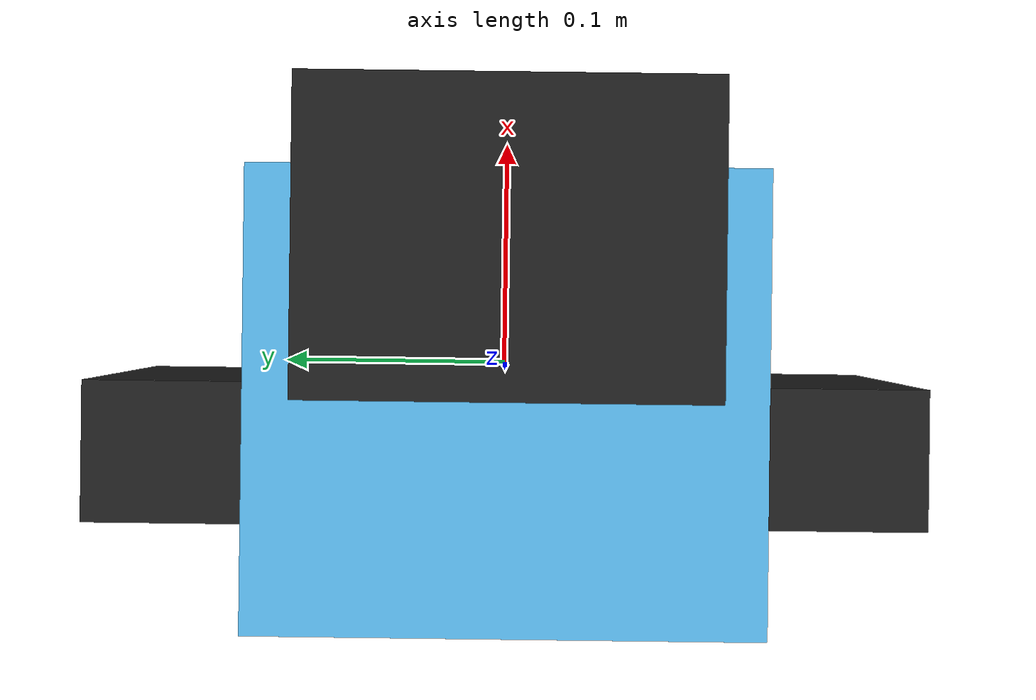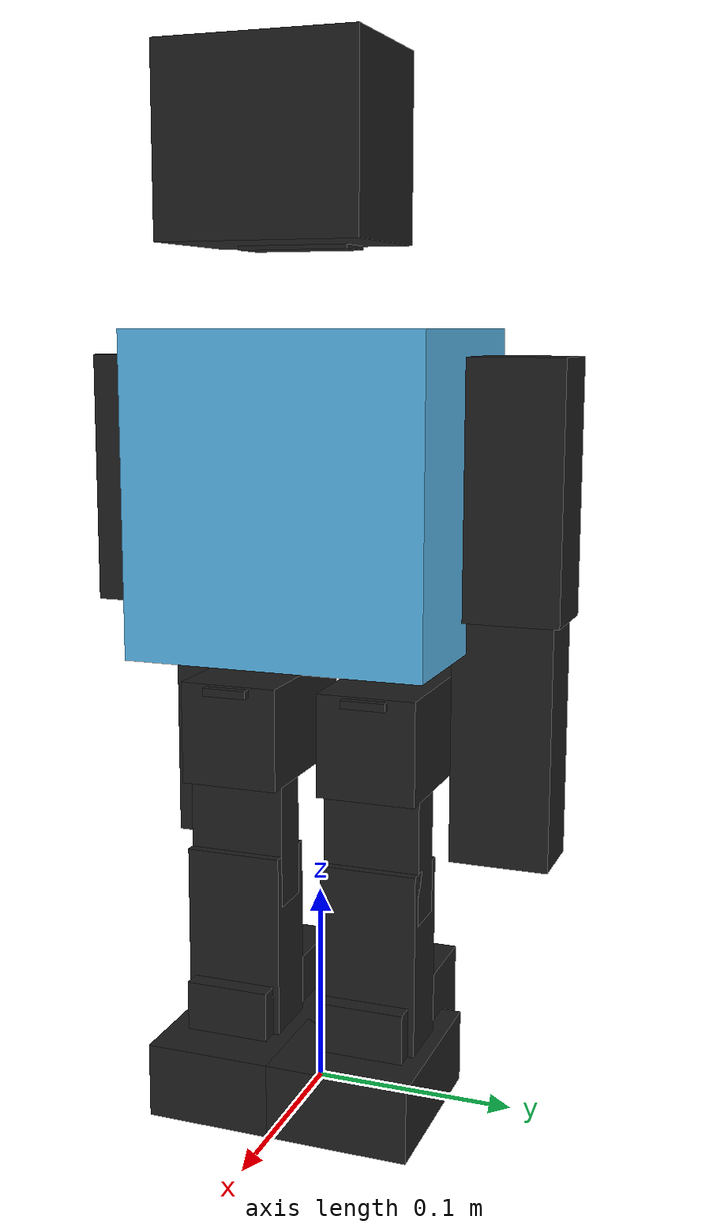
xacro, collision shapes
<?xml version="1.0" ?>

<robot name="soccerbot" xmlns:xacro="http://www.ros.org/wiki/xacro">

    <xacro:property name="PI" value="3.1415926535897931"/>

    <xacro:include filename="$(find soccer_description)/models/arm.xacro" />
    <xacro:include filename="$(find soccer_description)/models/leg.xacro" />

    <arm name="right" origin="torso" direction="1" />
    <arm name="left" origin="torso" direction="-1" />
    <leg name="right" origin="torso" direction="1" />
    <leg name="left" origin="torso" direction="-1" />

    <!-- Links -->
    <link name="base_link" />
    <link name="torso">
        <inertial>
            <mass value="1529.201"/>
            <origin rpy="0 0 0" xyz="0.0082498 -0.0017440 -0.0522479"/>
            <inertia ixx="4.323" ixy="0.006" ixz="0.040" iyy="5.198" iyz="-0.015" izz="3.567"/>
        </inertial>
        <collision name="collision">
            <origin rpy="0 0 0" xyz="0 0 -0.052"/>
            <geometry>
                <box size="0.130 0.145 0.152"/>
            </geometry>
        </collision>
        <visual name="visual">
            <origin rpy="0 0 0" xyz="0 0 0"/>
            <geometry>
                <mesh filename="package://soccer_description/meshes/torso.dae" scale="1 1 1"/>
            </geometry>
        </visual>
    </link>
    <link name="camera" />
    <link name="imu_link" />
    <link name="neck">
        <inertial>
            <mass value="11.294"/>
            <origin rpy="0  0  0" xyz="0 -0.0006476 0.0092453"/>
            <inertia ixx="0.005" ixy="0" ixz="0" iyy="0.001" iyz="0" izz="0.005"/>
        </inertial>
        <collision name="collision">
            <origin rpy="0  0  0" xyz="0 0 0.0165"/>
            <geometry>
                <box size="0.022 0.0523 0.033"/>
            </geometry>
        </collision>
        <visual name="visual">
            <origin rpy="0  0  0" xyz="0  0  0"/>
            <geometry>
                <mesh filename="package://soccer_description/meshes/neck.dae" scale="1 1 1"/>
            </geometry>
            <material name="black" />
        </visual>
    </link>
    <link name="head">
        <inertial>
            <mass value="282.919"/>
            <origin rpy="0  0  0" xyz="0.0237166 0.0018096 0.0255966"/>
            <inertia ixx="0.206" ixy="0.001" ixz="-0.057" iyy="0.206" iyz="0.003" izz="0.160"/>
        </inertial>
        <collision name="collision">
            <origin rpy="0  0  0" xyz="0.01735 0 0.01995"/>
            <geometry>
                <box size="0.0712 0.094 0.0839"/>
            </geometry>
        </collision>
        <visual name="visual">
            <origin rpy="0  0  0" xyz="0  0  0"/>
            <geometry>
                <mesh filename="package://soccer_description/meshes/head.dae" scale="1 1 1"/>
            </geometry>
            <material name="black" />
        </visual>
    </link>

    <!-- Joints -->
    <joint name="base_link_torso" type="fixed">
        <parent link="base_link"/>
        <child link="torso"/>
        <origin rpy="0 0 0" xyz="0 0 0.3536"/>
        <axis xyz="1 0 0"/>
    </joint>

    <joint name="torso_imu" type="fixed">
        <parent link="torso"/>
        <child link="imu_link"/>
        <origin rpy="0 0 0" xyz="0.1 0 0.0075"/>
        <axis xyz="0 0 0"/>
    </joint>

    <joint name="torso_neck" type="revolute">
        <parent link="torso"/>
        <child link="neck"/>
        <origin rpy="0 0 0" xyz="0.024 0 0.05875"/>
        <axis xyz="0 0 1"/>
        <dynamics damping="0.0" friction="2000.0" />
        <limit effort="15000.0" lower="-1.571" upper="1.571" velocity="1.0"/>
    </joint>
    <joint name="neck_head" type="revolute">
        <parent link="neck"/>
        <child link="head"/>
        <origin rpy="0 0 0" xyz="0 0 0.024"/>
        <axis xyz="0 1 0"/>
        <dynamics damping="0.0" friction="2000.0" />
        <limit effort="15000.0" lower="-2.356" upper="2.356" velocity="1.0"/>
    </joint>
    <joint name="head_camera" type="fixed">
        <parent link="head"/>
        <child link="camera"/>
        <origin rpy="0 0 0" xyz="0.05295 0.00145 0.04740"/>
        <axis xyz="0  0  0"/>
        <dynamics damping="0.0" friction="2000.0" />
        <limit effort="0" lower="0" upper="0" velocity="0"/>
    </joint>

    <!-- Transmission -->

    <transmission name="torso_neck">
        <type>transmission_interface/SimpleTransmission</type>
        <joint name="torso_neck">
            <hardwareInterface>hardware_interface/EffortJointInterface</hardwareInterface>
        </joint>
        <actuator name="motor13">
            <hardwareInterface>hardware_interface/EffortJointInterface</hardwareInterface>
            <mechanicalReduction>1</mechanicalReduction>
        </actuator>
    </transmission>
    <transmission name="neck_head">
        <type>transmission_interface/SimpleTransmission</type>
        <joint name="neck_head">
            <hardwareInterface>hardware_interface/EffortJointInterface</hardwareInterface>
        </joint>
        <actuator name="motor14">
            <hardwareInterface>hardware_interface/EffortJointInterface</hardwareInterface>
            <mechanicalReduction>1</mechanicalReduction>
        </actuator>
    </transmission>

</robot>

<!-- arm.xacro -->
<robot name="soccerbot" xmlns:xacro="http://www.ros.org/wiki/xacro">
        <xacro:macro name="arm" params="name origin direction">
            <link name="${name}_bicep">
                <inertial>
                    <mass value="213.5130"/>
                    <origin rpy="0  0  0" xyz="0.000 ${direction * 0.02579} -0.04955"/>
                    <inertia ixx="0.282" ixy="0.000" ixz="${direction * 0.000}"
                             iyy="0.274" iyz="${direction * 0.012}"
                             izz="0.024" />
                </inertial>
                <collision name="collision">
                    <origin rpy="0  0  0" xyz="0 ${direction * 0.0225} -0.05001"/>
                    <geometry>
                        <box size="0.04 0.04776 0.123"/>
                    </geometry>
                </collision>
                <visual name="visual">
                    <origin rpy="0  0  0" xyz="0  0  0"/>
                    <geometry>
                        <mesh filename="package://soccer_description/meshes/${name}_bicep.dae" scale="1 1 1"/>
                    </geometry>
                    <material name="black" />
                </visual>
            </link>
            <link name="${name}_forearm">
                <inertial>
                    <mass value="45.7"/>
                    <origin rpy="0  0  0" xyz="0 0.0245 -0.0546097" />
                    <inertia ixx="0.113" ixy="0.000" ixz="${direction * 0.001}"
                             iyy="0.107" iyz="${direction * 0.000}"
                             izz="0.012" />
                </inertial>
                <collision name="collision">
                    <origin rpy="0  0  0" xyz="-0.0055 0.01750 -0.0600"/>
                    <geometry>
                        <box size="0.035 0.049 0.144"/>
                    </geometry>
                </collision>
                <visual name="visual">
                    <origin rpy="0  0  0" xyz="0  0  0"/>
                    <geometry>
                        <mesh filename="package://soccer_description/meshes/${name}_forearm.dae" scale="1 1 1"/>
                    </geometry>
                    <material name="black" />
                </visual>
            </link>

            <joint name="${origin}_${name}_bicep" type="revolute">
                <parent link="${origin}"/>
                <child link="${name}_bicep"/>
                <origin rpy="0 0 0" xyz="-0.0157 ${direction * 0.0725} 0"/>
                <axis xyz="0 -1 0"/>
                <dynamics damping="0.0" friction="2000.0" />
                <limit effort="15000.0" lower="-1.571" upper="3.927" velocity="1.0"/>
            </joint>
            <joint name="${name}_bicep_forearm" type="revolute">
                <parent link="${name}_bicep"/>
                <child link="${name}_forearm"/>
                <origin rpy="0 0 0" xyz="0 0 -0.10"/>
                <axis xyz="0 -1 0"/>
                <dynamics damping="0.0" friction="2000.0" />
                <limit effort="15000.0" lower="0" upper="3.14159" velocity="1.0"/>
            </joint>

            <transmission name="${origin}_${name}_bicep">
                <type>transmission_interface/SimpleTransmission</type>
                <joint name="${origin}_${name}_bicep">
                    <hardwareInterface>hardware_interface/EffortJointInterface</hardwareInterface>
                </joint>
                <actuator name="motor15">
                    <hardwareInterface>hardware_interface/EffortJointInterface</hardwareInterface>
                    <mechanicalReduction>1</mechanicalReduction>
                </actuator>
            </transmission>
            <transmission name="${name}_bicep_forearm">
                <type>transmission_interface/SimpleTransmission</type>
                <joint name="${name}_bicep_forearm">
                    <hardwareInterface>hardware_interface/EffortJointInterface</hardwareInterface>
                </joint>
                <actuator name="motor16">
                    <hardwareInterface>hardware_interface/EffortJointInterface</hardwareInterface>
                    <mechanicalReduction>1</mechanicalReduction>
                </actuator>
            </transmission>
        </xacro:macro>
    </robot>

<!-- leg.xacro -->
<robot name="soccerbot" xmlns:xacro="http://www.ros.org/wiki/xacro">
    <xacro:macro name="leg" params="name origin direction">
    <link name="${name}_hip_side">
        <inertial>
            <mass value="9.364"/>
            <origin rpy="0  0  0" xyz="0.0003695 0.0000 0.01689"/>
            <inertia ixx="0.002" ixy="0.000" ixz="0.000" iyy="0.005" iyz="0.000" izz="0.004"/>
        </inertial>
        <collision name="collision">
            <origin rpy="0  0  0" xyz="0 0 0.00899"/>
            <geometry>
                <box size="0.0485 0.022 0.0039"/>
            </geometry>
        </collision>
        <visual name="visual">
            <origin rpy="0  0  0" xyz="0  0  0"/>
            <geometry>
                <mesh filename="package://soccer_description/meshes/${name}_hip_side.dae" scale="1 1 1"/>
            </geometry>
            <material name="black" />
        </visual>
    </link>
    <link name="${name}_hip_front">
        <inertial>
            <mass value="153.186"/>
            <origin rpy="0 0 0" xyz="-0.02093 0 -0.011313"/>
            <inertia ixx="0.041" ixy="0.000" ixz="-0.002" iyy="0.118" iyz="0.000" izz="0.106"/>
        </inertial>
        <collision name="collision">
            <origin rpy="0 0 0" xyz="-0.02187 0 -0.01332"/>
            <geometry>
                <box size="0.083747 0.04885 0.0506"/>
            </geometry>
        </collision>
        <visual name="visual">
            <origin rpy="0  0  0" xyz="0  0  0"/>
            <geometry>
                <mesh filename="package://soccer_description/meshes/${name}_hip_front.dae" scale="1 1 1"/>
            </geometry>
            <material name="black" />
        </visual>
    </link>
    <link name="${name}_thigh">
        <inertial>
            <mass value="21.438"/>
            <origin rpy="0 0 0" xyz="0.0019422 ${direction * 0.0001419} -0.0469409"/>
            <inertia ixx="0.025" ixy="${direction * 0.002}" ixz="0.000" iyy="0.016" iyz="0.000" izz="0.010"/>
        </inertial>
        <collision name="collision">
            <origin rpy="0 0 0" xyz="0 0 -0.0445"/>
            <geometry>
                <box size="0.022 0.048 0.111"/>
            </geometry>
        </collision>
        <visual name="visual">
            <origin rpy="0  0  0" xyz="0  0  0"/>
            <geometry>
                <mesh filename="package://soccer_description/meshes/${name}_thigh.dae" scale="1 1 1"/>
            </geometry>
            <material name="black" />
        </visual>
    </link>
    <link name="${name}_calve">
        <inertial>
            <mass value="86.547"/>
            <origin rpy="0  0  0" xyz="0 ${direction * -0.0003259} -0.0150123"/>
            <inertia ixx="0.054" ixy="0.000" ixz="0.000" iyy="0.046" iyz="-0.001" izz="0.019"/>
        </inertial>
        <collision name="collision">
            <origin rpy="0 0 0" xyz="0 0 -0.03385"/>
            <geometry>
                <box size="0.031883 0.048 0.105683"/>
            </geometry>
        </collision>
        <visual name="visual">
            <origin rpy="0 0 0" xyz="0 0 -0.0827"/>
            <geometry>
                <mesh filename="package://soccer_description/meshes/${name}_calve.dae" scale="1 1 1"/>
            </geometry>
            <material name="black" />
        </visual>
    </link>
    <link name="${name}_ankle">
        <inertial>
            <mass value="153.186"/>
            <origin rpy="0 0 0" xyz="-0.020939 0.000 0.011313"/>
            <inertia ixx="0.041" ixy="0.000" ixz="0.002" iyy="0.118" iyz="0.000" izz="0.106"/>
        </inertial>
        <collision name="collision">
            <origin rpy="0 0 0" xyz="-0.02014 0 0.01031"/>
            <geometry>
                <box size="0.090769 0.042 0.0506"/>
            </geometry>
        </collision>
        <visual name="visual">
            <origin rpy="0 0 0" xyz="0  0  0"/>
            <geometry>
                <mesh filename="package://soccer_description/meshes/${name}_ankle.dae" scale="1 1 1"/>
            </geometry>
            <material name="black" />
        </visual>
    </link>
    <link name="${name}_foot">
        <inertial>
            <mass value="23.216"/>
            <origin rpy="0 0 0" xyz="-0.020939 0.0 0.011313"/>
            <inertia ixx="0.006" ixy="0.000" ixz="0.000" iyy="0.018" iyz="0.000" izz="0.022"/>
        </inertial>
        <collision name="collision">
            <origin rpy="0 0 0" xyz="0.00385 ${direction * -0.00401} -0.00737 "/>
            <geometry>
                <box size="0.09 0.07 0.03674"/>
            </geometry>
            <contact_coefficients mu ="100.0" />
        </collision>
        <visual name="visual">
            <origin rpy="0  0  0" xyz="0  0  0"/>
            <geometry>
                <mesh filename="package://soccer_description/meshes/${name}_foot.dae" scale="1 1 1"/>
            </geometry>
            <material name="black" />
        </visual>
    </link>

    <joint name="torso_${name}_hip_side" type="revolute">
        <parent link="torso"/>
        <child link="${name}_hip_side"/>
        <origin rpy="0 0 0" xyz="0.0135 ${direction * 0.035} -0.156"/>
        <axis xyz="0 0 ${direction * -1}"/>
        <dynamics damping="0.0" friction="2000.0" />
        <limit effort="31000.0" lower="-1.309" upper="0.524" velocity="1.0"/>
    </joint>
    <joint name="${name}_hip_side_hip_front" type="revolute">
        <parent link="${name}_hip_side"/>
        <child link="${name}_hip_front"/>
        <origin rpy="0 0 0" xyz="0 0 0"/>
        <axis xyz="-1 0 0"/>
        <dynamics damping="0.0" friction="2000.0" />
        <xacro:if value="${direction == 1}">
         <limit effort="31000.0" lower="-0.785" upper="1.571" velocity="1.0"/>
        </xacro:if>
        <xacro:if value="${direction == -1}">
        <limit effort="31000.0" lower="-1.571" upper="0.785" velocity="1.0"/>
        </xacro:if>
    </joint>
    <joint name="${name}_hip_front_thigh" type="revolute">
        <parent link="${name}_hip_front"/>
        <child link="${name}_thigh"/>
        <origin rpy="0 0 0" xyz="0 0 0"/>
        <axis xyz="0 -1 0"/>
        <dynamics damping="0.0" friction="2000.0" />
        <limit effort="31000.0" lower="-0.785" upper="2.356" velocity="1.0"/>
    </joint>
    <joint name="${name}_thigh_calve" type="revolute">
        <parent link="${name}_thigh"/>
        <child link="${name}_calve"/>
        <origin rpy="0 0 0" xyz="0 0 -0.09290"/>
        <axis xyz="0 -1 0"/>
        <dynamics damping="0.0" friction="2000.0" />
        <limit effort="31000.0" lower="-2.793" upper="0" velocity="1.0"/>
    </joint>
    <joint name="${name}_calve_ankle" type="revolute">
        <parent link="${name}_calve"/>
        <child link="${name}_ankle"/>
        <origin rpy="0 0 0" xyz="0 0 -0.0827"/>
        <axis xyz="0 -1 0"/>
        <dynamics damping="0.0" friction="2000.0" />
        <limit effort="31000.0" lower="-0.785" upper="1.571" velocity="1.0"/>
    </joint>
    <joint name="${name}_ankle_foot" type="revolute">
        <parent link="${name}_ankle"/>
        <child link="${name}_foot"/>
        <origin rpy="0 0 0" xyz="0 0 0"/>
        <axis xyz="-1 0 0"/>
        <dynamics damping="0.0" friction="2000.0" />
        <limit effort="31000.0" lower="-0.785" upper="0.785" velocity="1.0"/>
    </joint>

    <transmission name="torso_${name}_hip_side">
        <type>transmission_interface/SimpleTransmission</type>
        <joint name="torso_${name}_hip_side">
            <hardwareInterface>hardware_interface/EffortJointInterface</hardwareInterface>
        </joint>
        <actuator name="torso_${name}_hip_side_motor">
            <hardwareInterface>hardware_interface/EffortJointInterface</hardwareInterface>
            <mechanicalReduction>1</mechanicalReduction>
        </actuator>
    </transmission>
    <transmission name="${name}_hip_side_hip_front">
        <type>transmission_interface/SimpleTransmission</type>
        <joint name="${name}_hip_side_hip_front">
            <hardwareInterface>hardware_interface/EffortJointInterface</hardwareInterface>
        </joint>
        <actuator name="${name}_hip_side_hip_front_motor">
            <hardwareInterface>hardware_interface/EffortJointInterface</hardwareInterface>
            <mechanicalReduction>1</mechanicalReduction>
        </actuator>
    </transmission>
    <transmission name="${name}_hip_front_thigh">
        <type>transmission_interface/SimpleTransmission</type>
        <joint name="${name}_hip_front_thigh">
            <hardwareInterface>hardware_interface/EffortJointInterface</hardwareInterface>
        </joint>
        <actuator name="${name}_hip_front_thigh_motor">
            <hardwareInterface>hardware_interface/EffortJointInterface</hardwareInterface>
            <mechanicalReduction>1</mechanicalReduction>
        </actuator>
    </transmission>
    <transmission name="${name}_thigh_calve">
        <type>transmission_interface/SimpleTransmission</type>
        <joint name="${name}_thigh_calve">
            <hardwareInterface>hardware_interface/EffortJointInterface</hardwareInterface>
        </joint>
        <actuator name="${name}_thigh_calve_motor">
            <hardwareInterface>hardware_interface/EffortJointInterface</hardwareInterface>
            <mechanicalReduction>1</mechanicalReduction>
        </actuator>
    </transmission>
    <transmission name="${name}_calve_ankle">
        <type>transmission_interface/SimpleTransmission</type>
        <joint name="${name}_calve_ankle">
            <hardwareInterface>hardware_interface/EffortJointInterface</hardwareInterface>
        </joint>
        <actuator name="${name}_calve_ankle_motor">
            <hardwareInterface>hardware_interface/EffortJointInterface</hardwareInterface>
            <mechanicalReduction>1</mechanicalReduction>
        </actuator>
    </transmission>
    <transmission name="${name}_ankle_foot">
        <type>transmission_interface/SimpleTransmission</type>
        <joint name="${name}_ankle_foot">
            <hardwareInterface>hardware_interface/EffortJointInterface</hardwareInterface>
        </joint>
        <actuator name="${name}_ankle_foot_motor">
            <hardwareInterface>hardware_interface/EffortJointInterface</hardwareInterface>
            <mechanicalReduction>1</mechanicalReduction>
        </actuator>
    </transmission>
    </xacro:macro>
</robot>
